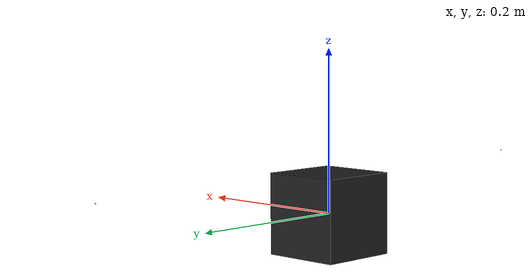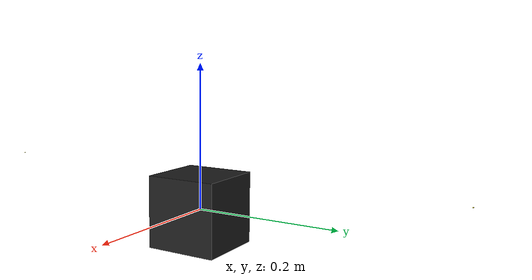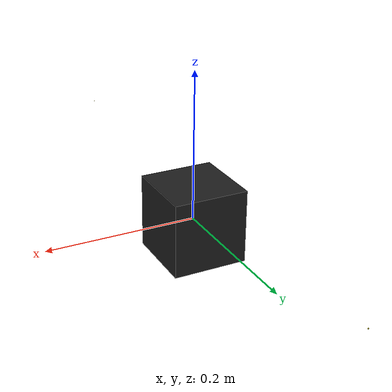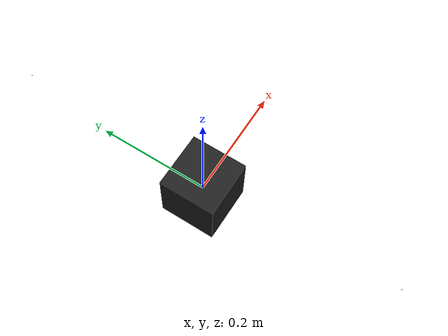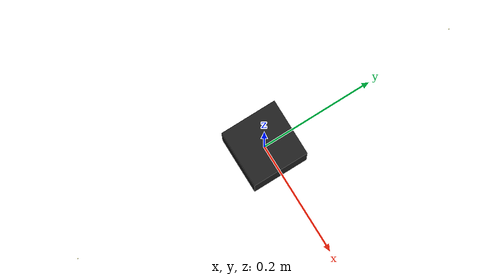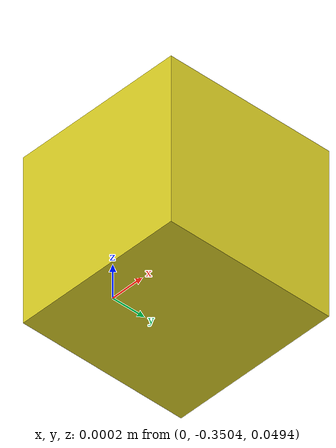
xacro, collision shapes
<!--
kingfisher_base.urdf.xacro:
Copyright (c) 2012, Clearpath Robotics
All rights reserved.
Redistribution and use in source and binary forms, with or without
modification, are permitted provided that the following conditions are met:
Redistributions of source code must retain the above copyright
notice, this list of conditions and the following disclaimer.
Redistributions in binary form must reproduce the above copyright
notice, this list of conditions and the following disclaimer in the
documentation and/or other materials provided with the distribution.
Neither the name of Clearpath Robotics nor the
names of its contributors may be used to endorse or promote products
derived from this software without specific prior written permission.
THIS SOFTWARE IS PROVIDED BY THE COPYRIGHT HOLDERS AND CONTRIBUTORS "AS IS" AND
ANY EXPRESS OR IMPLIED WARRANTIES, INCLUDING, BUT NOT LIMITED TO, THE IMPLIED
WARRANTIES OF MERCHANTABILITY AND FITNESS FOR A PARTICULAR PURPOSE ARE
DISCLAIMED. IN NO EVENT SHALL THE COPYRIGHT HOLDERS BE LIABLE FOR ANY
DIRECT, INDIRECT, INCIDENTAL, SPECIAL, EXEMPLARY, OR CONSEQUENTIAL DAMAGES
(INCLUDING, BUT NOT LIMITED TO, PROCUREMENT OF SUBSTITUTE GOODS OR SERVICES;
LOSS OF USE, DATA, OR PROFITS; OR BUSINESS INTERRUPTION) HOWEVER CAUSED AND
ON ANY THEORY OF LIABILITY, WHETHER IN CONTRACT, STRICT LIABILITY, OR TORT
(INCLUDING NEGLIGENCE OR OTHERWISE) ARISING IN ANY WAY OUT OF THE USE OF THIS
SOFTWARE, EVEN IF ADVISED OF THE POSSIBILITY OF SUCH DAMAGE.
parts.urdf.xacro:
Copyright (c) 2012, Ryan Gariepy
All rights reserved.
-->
<?xml version="1.0"?>

<robot name="kingfisher"
    xmlns:sensor="http://playerstage.sourceforge.net/gazebo/xmlschema/#sensor"
    xmlns:controller="http://playerstage.sourceforge.net/gazebo/xmlschema/#controller"
    xmlns:interface="http://playerstage.sourceforge.net/gazebo/xmlschema/#interface">

    <!-- Included URDF Files -->
    <include filename="$(find kingfisher_description)/urdf/kingfisher_base.urdf.xacro" />

    <!-- Set up gps configuration -->
    <gazebo>
        <controller:kingfisher_gps_plugin name="kingfisher_gps" plugin="libkingfisher_ros_gps.so">
            <alwaysOn>true</alwaysOn>
            <updateRate>4.0</updateRate>
            <bodyName>base_link</bodyName>
            <topicName>fix</topicName>
            <velocityTopicName>fix_velocity</velocityTopicName>
            <drift>5.0 5.0 5.0</drift>
            <gaussianNoise>0.1 0.1 0.1</gaussianNoise>
            <velocityDrift>0 0 0</velocityDrift>
            <velocityGaussianNoise>0.1 0.1 0.1</velocityGaussianNoise>
        </controller:kingfisher_gps_plugin>
    </gazebo>

    <!-- Set up imu configuration -->
    <gazebo>
        <controller:kingfisher_imu_plugin name="kingfisher_imu" plugin="libkingfisher_ros_imu.so">
            <updateRate>100.0</updateRate>
            <bodyName>base_link</bodyName>
            <topicName>raw_imu</topicName>
            <rpyOffsets>0 0 0</rpyOffsets> <!-- deprecated -->
            <gaussianNoise>0</gaussianNoise> <!-- deprecated -->
            <accelDrift>0.5 0.5 0.5</accelDrift>
            <accelGaussianNoise>0.35 0.35 0.3</accelGaussianNoise>
            <rateDrift>0.1 0.1 0.1</rateDrift>
            <rateGaussianNoise>0.05 0.05 0.015</rateGaussianNoise>
            <headingDrift>0.1</headingDrift>
            <headingGaussianNoise>0.05</headingGaussianNoise>
        </controller:kingfisher_imu_plugin>
    </gazebo>

    <!-- Set up camera linkage and configuration -->
    <joint name="base_link_camera_link_joint" type="fixed">
		<origin xyz="0 0 0.2" rpy="0 0 0" />
        <parent link="base_link"/>
        <child link="camera_link" />
    </joint>

    <link name="camera_link">
        <inertial>
            <mass value="1"/>
            <origin xyz="0 0 0"/>
            <inertia ixx="0.1" ixy="0.0" ixz="0.0" iyy="0.1" iyz="0.0" izz="0.1"/>
        </inertial>
    </link>

    <gazebo reference="camera_link">
        <sensor:camera name="camera_sensor">
            <imageSize>640 480</imageSize>
            <imageFormat>BAYER_BGGR8</imageFormat>
            <hfov>90</hfov>
            <nearClip>0.1</nearClip>
            <farClip>100</farClip>
            <updateRate>25.0</updateRate>
            <controller:gazebo_ros_camera name="camera_controller" plugin="libkingfisher_ros_prosilica.so">
                <alwaysOn>true</alwaysOn>
                <updateRate>25.0</updateRate>
                <cameraName>camera</cameraName>
                <imageTopicName>image_raw</imageTopicName>
                <cameraInfoTopicName>camera_info</cameraInfoTopicName>
                <frameName>camera_link</frameName>
                <CxPrime>320.5</CxPrime>
                <Cx>320.5</Cx>
                <Cy>240.5</Cy>
                <!-- image_width / (2*tan(hfov_radian /2)) -->
                <!-- 320 for wide and 772.55 for narrow stereo camera -->
                <focal_length>320</focal_length>
                <distortion_k1>0.0</distortion_k1>
                <distortion_k2>0.0</distortion_k2>
                <distortion_k3>0.0</distortion_k3>
                <distortion_t1>0.0</distortion_t1>
                <distortion_t2>0.0</distortion_t2>
            </controller:gazebo_ros_camera>
        </sensor:camera>
        <material>Gazebo/Blue</material>
    </gazebo>

    <!-- Set up sonar linkage and configuration -->
    <joint name="base_link_sonar_link_joint" type="fixed">
		<origin xyz="0 0 -0.2" rpy="0 1.57 0" />
        <parent link="base_link"/>
        <child link="sonar_link" />
    </joint>

    <link name="sonar_link">
        <inertial>
            <mass value="1"/>
            <origin xyz="0 0 0"/>
            <inertia ixx="0.1" ixy="0.0" ixz="0.0" iyy="0.1" iyz="0.0" izz="0.1"/>
        </inertial>
    </link>

    <gazebo reference="sonar_link">
      <sensor:ray name="sonar_sensor">
        <rayCount>5</rayCount>
        <rangeCount>5</rangeCount>
        <verticalRayCount>5</verticalRayCount>
        <verticalRangeCount>5</verticalRangeCount>

        <minAngle>-${5/2}</minAngle>
        <verticalMinAngle>-${5/2}</verticalMinAngle>
        <maxAngle>${5/2}</maxAngle>
        <verticalMaxAngle>${5/2}</verticalMaxAngle>

        <minRange>0</minRange>
        <maxRange>30</maxRange>
        <resRange>0.01</resRange>

        <updateRate>20</updateRate>

        <controller:hector_gazebo_ros_sonar name="gazebo_ros_sonar_controller" plugin="libkingfisher_ros_sonar.so">
            <gaussianNoise>0.005</gaussianNoise>
            <topicName>sonar</topicName>
            <frameId>sonar_link</frameId>
            <offset>0</offset>
            <drift>0</drift>
            <driftFrequency>0</driftFrequency>
        </controller:hector_gazebo_ros_sonar>
      </sensor:ray>
    </gazebo>

</robot>

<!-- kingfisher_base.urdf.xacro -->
<robot
    xmlns:xi="http://www.w3.org/2001/XInclude"
    xmlns:gazebo="http://playerstage.sourceforge.net/gazebo/xmlschema/#gz"
    xmlns:model="http://playerstage.sourceforge.net/gazebo/xmlschema/#model"
    xmlns:sensor="http://playerstage.sourceforge.net/gazebo/xmlschema/#sensor"
    xmlns:body="http://playerstage.sourceforge.net/gazebo/xmlschema/#body"
    xmlns:geom="http://playerstage.sourceforge.net/gazebo/xmlschema/#geom"
    xmlns:joint="http://playerstage.sourceforge.net/gazebo/xmlschema/#joint"
    xmlns:controller="http://playerstage.sourceforge.net/gazebo/xmlschema/#controller"
    xmlns:interface="http://playerstage.sourceforge.net/gazebo/xmlschema/#interface"
    xmlns:rendering="http://playerstage.sourceforge.net/gazebo/xmlschema/#rendering"
    xmlns:renderable="http://playerstage.sourceforge.net/gazebo/xmlschema/#renderable"
    xmlns:physics="http://playerstage.sourceforge.net/gazebo/xmlschema/#physics"
    xmlns:xacro="http://ros.org/wiki/xacro" name="kingfisher">

	<!-- Included URDF/XACRO Files -->
    <include filename="$(find kingfisher_description)/urdf/parts.urdf.xacro" />

    <!-- PROPERTY LIST -->
    <!--All units in m-kg-s-radians unit system -->
    <property name="M_PI" value="3.1415926535897931" />

    <!-- BASE-LINK -->
    <!--Actual body/chassis of the robot-->
    <link name="base_link">
        <inertial>
            <mass value="29" />
            <origin xyz="0 0 0" />
            <inertia ixx="10" ixy="0" ixz="0" iyy="10" iyz="0" izz="10" />
        </inertial>

        <visual>
            <origin xyz="0 0 0" rpy="${M_PI/2} 0 ${M_PI/2}" />
            <geometry>
                <mesh filename="package://kingfisher_description/mesh/kingfisher_base.stl" />
            </geometry>
        </visual>

        <collision>
	        <origin xyz="0 0 0" rpy="0 0 0" />
	        <geometry>
                <box size = "0.1 0.1 0.1"/> <!--making it slightly bigger in x and z direction-->
            </geometry>
        </collision>
    </link>
    <gazebo reference="base_link">
        <material>Gazebo/FlatBlack</material>
        <turnGravityOff>false</turnGravityOff>
    </gazebo>

    <!-- PANEL-LINKS -->
    <!-- Top Plate -->
    <kingfisher_part parent="base_link" name="left_panel" mesh="left_panel"
          translateX="0.0" translateY="-0.35" translateZ="0.05"
          rotateX="${M_PI/2}" rotateY="0.0" rotateZ="${M_PI/2}"/>
    <gazebo reference="base_link_left_panel_part">
        <material>Gazebo/Yellow</material>
    </gazebo>

    <kingfisher_part parent="base_link" name="right_panel" mesh="right_panel"
          translateX="0.0" translateY="0.35" translateZ="0.05"
          rotateX="${M_PI/2}" rotateY="0.0" rotateZ="${-M_PI/2}"/>
    <gazebo reference="base_link_right_panel_part">
        <material>Gazebo/Yellow</material>
    </gazebo>

    <!--Gazebo Plugin for simulating Kingfisher dynamics-->
    <gazebo>
        <controller:kingfisher_plugin name="kingfisher_dynamic" plugin="libkingfisher_gazebo_plugins.so">
            <maxForce>62.0</maxForce>
            <bodyName>base_link</bodyName>
            <waterDensity>997.7735</waterDensity>
            <waterLevel>1</waterLevel>
            <xyzDampingFactor>20.0</xyzDampingFactor>
            <yawDampingFactor>20.0</yawDampingFactor>
            <rolPitDampingFactor>5.0</rolPitDampingFactor>
        </controller:kingfisher_plugin>
    </gazebo>

</robot>

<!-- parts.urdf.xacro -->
<robot xmlns:sensor="http://playerstage.sourceforge.net/gazebo/xmlschema/#sensor"
	xmlns:controller="http://playerstage.sourceforge.net/gazebo/xmlschema/#controller"
	xmlns:interface="http://playerstage.sourceforge.net/gazebo/xmlschema/#interface"
	xmlns:xacro="http://ros.org/wiki/xacro" name="kingfisher_part">

	<property name="x_com" value="0.00000000" /> <!-- com : center of mass -->
	<property name="y_com" value="0.00000000" /> <!-- com : center of mass -->
	<property name="z_com" value="0.00000000" /> <!-- com : center of mass -->

	<property name="x_size" value="1.0" />
	<property name="y_size" value="1.0" />
	<property name="z_size" value="1.0" />

	<property name="mass" value="0.1" /> <!-- in kg-->

	<property name="ixx_com_cs" value="0.01" /> <!-- at center of mass aligned with coordinate system, kg*m^2-->
	<property name="ixy_com_cs" value="0.0" /> <!-- at center of mass aligned with coordinate system, kg*m^2-->
	<property name="ixz_com_cs" value="0.0" /> <!-- at center of mass aligned with coordinate system, kg*m^2-->
	<property name="iyy_com_cs" value="0.01" /> <!-- at center of mass aligned with coordinate system, kg*m^2-->
	<property name="iyz_com_cs" value="0.00" /> <!-- at center of mass aligned with coordinate system, kg*m^2-->
	<property name="izz_com_cs" value="0.01" /> <!-- at center of mass aligned with coordinate system, kg*m^2-->

	<xacro:macro name="kingfisher_part" params="parent name mesh translateX translateY translateZ rotateX rotateY rotateZ">
		<joint name="${parent}_${name}_joint" type="fixed">
		    <origin xyz="${translateX} ${translateY} ${translateZ}"
		            rpy="${rotateX} ${rotateY} ${rotateZ}" />
		    <parent link="${parent}" />
		    <child link="${parent}_${name}_part" />
		</joint>

		<link name="${parent}_${name}_part">
			<inertial>
				<mass value="${mass}" />
				<origin xyz="${x_com} ${y_com} ${z_com}" />
				<inertia ixx="${ixx_com_cs}" ixy="${ixy_com_cs}" ixz="${ixz_com_cs}"
					iyy="${iyy_com_cs}" iyz="${iyz_com_cs}" izz="${izz_com_cs}" />
			</inertial>
			<visual>
				<origin xyz="0 0 0" rpy="0 0 0" />
				<geometry>
					<mesh filename="package://kingfisher_description/mesh/${mesh}.stl" />
				</geometry>
			</visual>
			<collision>
				<origin xyz="0 0 0" rpy="0 0 0"/>
				<geometry>
					<box size="0.001 0.001 0.001" /> <!--the collision boundary for parts are taken into account by collision boundary of the base_link-->
				</geometry>
			</collision>
		</link>

  	</xacro:macro>
</robot>
